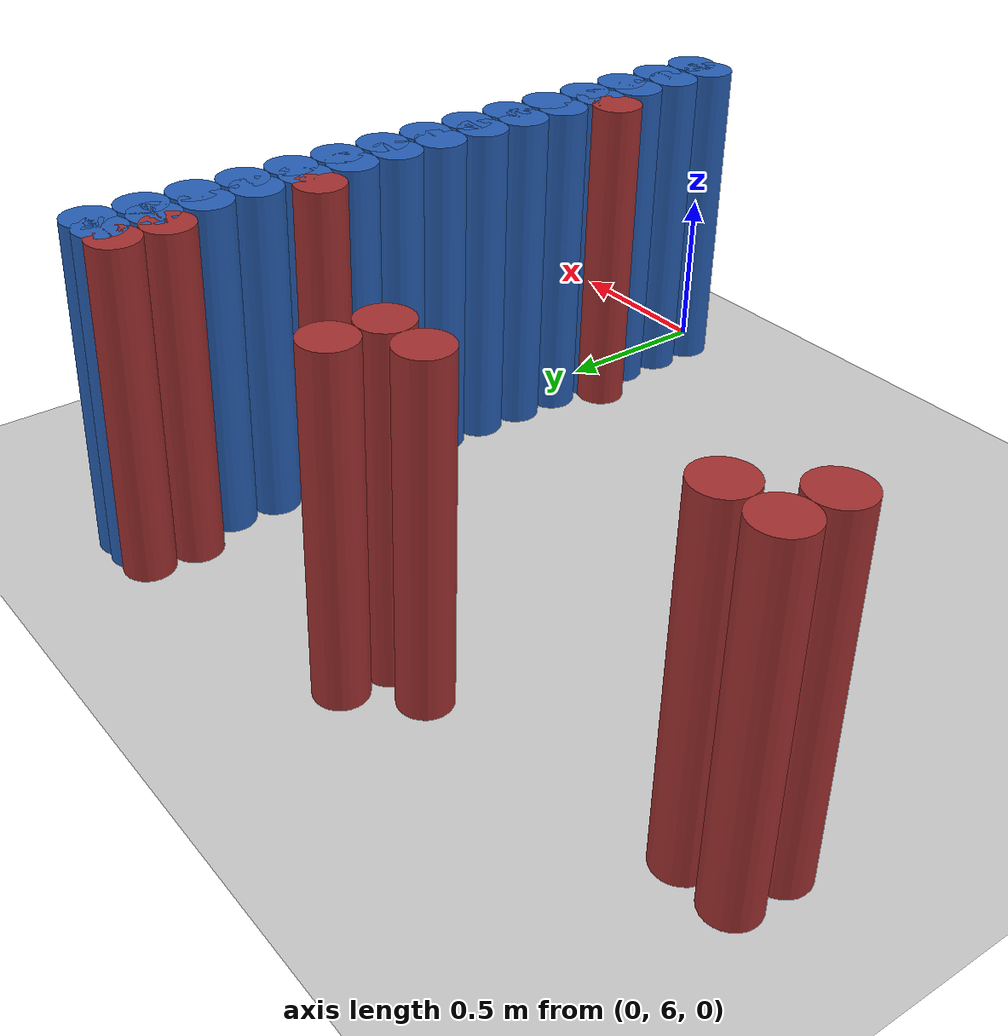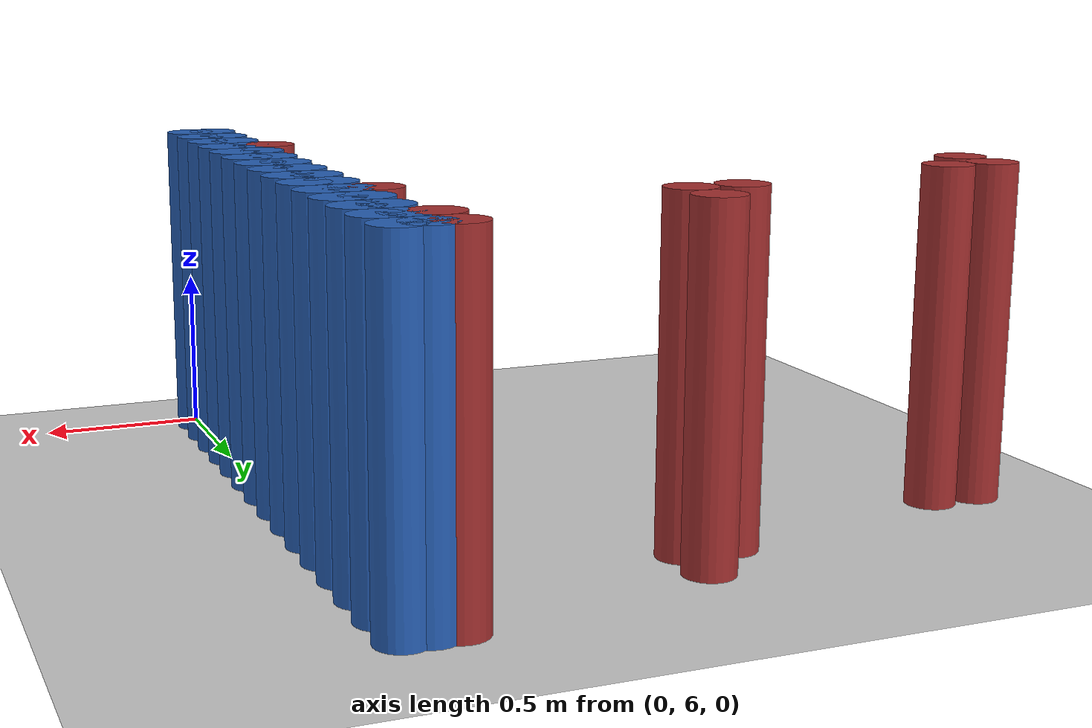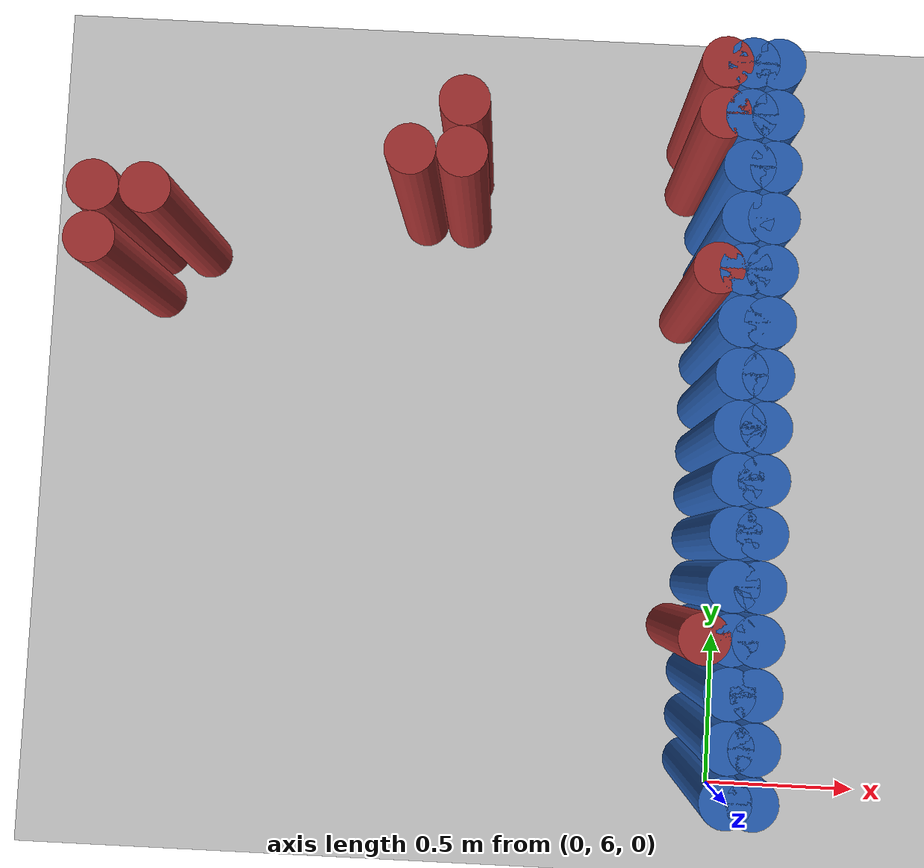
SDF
<sdf version="1.6">
 <world name="barn_world">
  <model name="ground_plane">
   <static>1</static>
   <link name="link">
    <collision name="collision">
     <geometry><plane><normal>0 0 1</normal><size>100 100</size></plane></geometry>
    </collision>
    <visual name="visual">
     <geometry><plane><normal>0 0 1</normal><size>100 100</size></plane></geometry>
     <material>
      <script><uri>file://media/materials/scripts/gazebo.material</uri><name>Gazebo/Grey</name></script>
     </material>
    </visual>
   </link>
  </model>
  <model name="unit_cylinder_183">
   <static>1</static>
   <pose>-1.9500 7.5750 0.5 0 0 0</pose>
   <link name="link">
    <collision name="collision">
     <geometry><cylinder><radius>0.075</radius><length>1</length></cylinder></geometry>
    </collision>
    <visual name="visual">
     <geometry><cylinder><radius>0.075</radius><length>1</length></cylinder></geometry>
     <material><ambient>0.648 0.192 0.192 1</ambient><diffuse>0.648 0.192 0.192 1</diffuse></material>
    </visual>
   </link>
  </model>
  <model name="unit_cylinder_184">
   <static>1</static>
   <pose>-1.9500 7.7250 0.5 0 0 0</pose>
   <link name="link">
    <collision name="collision">
     <geometry><cylinder><radius>0.075</radius><length>1</length></cylinder></geometry>
    </collision>
    <visual name="visual">
     <geometry><cylinder><radius>0.075</radius><length>1</length></cylinder></geometry>
     <material><ambient>0.648 0.192 0.192 1</ambient><diffuse>0.648 0.192 0.192 1</diffuse></material>
    </visual>
   </link>
  </model>
  <model name="unit_cylinder_185">
   <static>1</static>
   <pose>-1.8000 7.7250 0.5 0 0 0</pose>
   <link name="link">
    <collision name="collision">
     <geometry><cylinder><radius>0.075</radius><length>1</length></cylinder></geometry>
    </collision>
    <visual name="visual">
     <geometry><cylinder><radius>0.075</radius><length>1</length></cylinder></geometry>
     <material><ambient>0.648 0.192 0.192 1</ambient><diffuse>0.648 0.192 0.192 1</diffuse></material>
    </visual>
   </link>
  </model>
  <model name="unit_cylinder_189">
   <static>1</static>
   <pose>-1.0500 7.8750 0.5 0 0 0</pose>
   <link name="link">
    <collision name="collision">
     <geometry><cylinder><radius>0.075</radius><length>1</length></cylinder></geometry>
    </collision>
    <visual name="visual">
     <geometry><cylinder><radius>0.075</radius><length>1</length></cylinder></geometry>
     <material><ambient>0.648 0.192 0.192 1</ambient><diffuse>0.648 0.192 0.192 1</diffuse></material>
    </visual>
   </link>
  </model>
  <model name="unit_cylinder_190">
   <static>1</static>
   <pose>-0.9000 7.8750 0.5 0 0 0</pose>
   <link name="link">
    <collision name="collision">
     <geometry><cylinder><radius>0.075</radius><length>1</length></cylinder></geometry>
    </collision>
    <visual name="visual">
     <geometry><cylinder><radius>0.075</radius><length>1</length></cylinder></geometry>
     <material><ambient>0.648 0.192 0.192 1</ambient><diffuse>0.648 0.192 0.192 1</diffuse></material>
    </visual>
   </link>
  </model>
  <model name="unit_cylinder_191">
   <static>1</static>
   <pose>-0.9000 8.0250 0.5 0 0 0</pose>
   <link name="link">
    <collision name="collision">
     <geometry><cylinder><radius>0.075</radius><length>1</length></cylinder></geometry>
    </collision>
    <visual name="visual">
     <geometry><cylinder><radius>0.075</radius><length>1</length></cylinder></geometry>
     <material><ambient>0.648 0.192 0.192 1</ambient><diffuse>0.648 0.192 0.192 1</diffuse></material>
    </visual>
   </link>
  </model>
  <model name="unit_cylinder_197">
   <static>1</static>
   <pose>-0.1500 6.5250 0.5 0 0 0</pose>
   <link name="link">
    <collision name="collision">
     <geometry><cylinder><radius>0.075</radius><length>1</length></cylinder></geometry>
    </collision>
    <visual name="visual">
     <geometry><cylinder><radius>0.075</radius><length>1</length></cylinder></geometry>
     <material><ambient>0.648 0.192 0.192 1</ambient><diffuse>0.648 0.192 0.192 1</diffuse></material>
    </visual>
   </link>
  </model>
  <model name="unit_cylinder_198">
   <static>1</static>
   <pose>-0.1500 7.5750 0.5 0 0 0</pose>
   <link name="link">
    <collision name="collision">
     <geometry><cylinder><radius>0.075</radius><length>1</length></cylinder></geometry>
    </collision>
    <visual name="visual">
     <geometry><cylinder><radius>0.075</radius><length>1</length></cylinder></geometry>
     <material><ambient>0.648 0.192 0.192 1</ambient><diffuse>0.648 0.192 0.192 1</diffuse></material>
    </visual>
   </link>
  </model>
  <model name="unit_cylinder_199">
   <static>1</static>
   <pose>-0.1500 8.0250 0.5 0 0 0</pose>
   <link name="link">
    <collision name="collision">
     <geometry><cylinder><radius>0.075</radius><length>1</length></cylinder></geometry>
    </collision>
    <visual name="visual">
     <geometry><cylinder><radius>0.075</radius><length>1</length></cylinder></geometry>
     <material><ambient>0.648 0.192 0.192 1</ambient><diffuse>0.648 0.192 0.192 1</diffuse></material>
    </visual>
   </link>
  </model>
  <model name="unit_cylinder_200">
   <static>1</static>
   <pose>-0.1500 8.1750 0.5 0 0 0</pose>
   <link name="link">
    <collision name="collision">
     <geometry><cylinder><radius>0.075</radius><length>1</length></cylinder></geometry>
    </collision>
    <visual name="visual">
     <geometry><cylinder><radius>0.075</radius><length>1</length></cylinder></geometry>
     <material><ambient>0.648 0.192 0.192 1</ambient><diffuse>0.648 0.192 0.192 1</diffuse></material>
    </visual>
   </link>
  </model>
  <model name="unit_cylinder_208">
   <static>1</static>
   <pose>0.0000 6.0750 0.5 0 0 0</pose>
   <link name="link">
    <collision name="collision">
     <geometry><cylinder><radius>0.075</radius><length>1</length></cylinder></geometry>
    </collision>
    <visual name="visual">
     <geometry><cylinder><radius>0.075</radius><length>1</length></cylinder></geometry>
     <material><ambient>0.152 0.379 0.72 1</ambient><diffuse>0.152 0.379 0.72 1</diffuse></material>
    </visual>
   </link>
  </model>
  <model name="unit_cylinder_209">
   <static>1</static>
   <pose>0.0000 6.2250 0.5 0 0 0</pose>
   <link name="link">
    <collision name="collision">
     <geometry><cylinder><radius>0.075</radius><length>1</length></cylinder></geometry>
    </collision>
    <visual name="visual">
     <geometry><cylinder><radius>0.075</radius><length>1</length></cylinder></geometry>
     <material><ambient>0.152 0.379 0.72 1</ambient><diffuse>0.152 0.379 0.72 1</diffuse></material>
    </visual>
   </link>
  </model>
  <model name="unit_cylinder_210">
   <static>1</static>
   <pose>0.0000 6.3750 0.5 0 0 0</pose>
   <link name="link">
    <collision name="collision">
     <geometry><cylinder><radius>0.075</radius><length>1</length></cylinder></geometry>
    </collision>
    <visual name="visual">
     <geometry><cylinder><radius>0.075</radius><length>1</length></cylinder></geometry>
     <material><ambient>0.152 0.379 0.72 1</ambient><diffuse>0.152 0.379 0.72 1</diffuse></material>
    </visual>
   </link>
  </model>
  <model name="unit_cylinder_211">
   <static>1</static>
   <pose>0.0000 6.5250 0.5 0 0 0</pose>
   <link name="link">
    <collision name="collision">
     <geometry><cylinder><radius>0.075</radius><length>1</length></cylinder></geometry>
    </collision>
    <visual name="visual">
     <geometry><cylinder><radius>0.075</radius><length>1</length></cylinder></geometry>
     <material><ambient>0.152 0.379 0.72 1</ambient><diffuse>0.152 0.379 0.72 1</diffuse></material>
    </visual>
   </link>
  </model>
  <model name="unit_cylinder_212">
   <static>1</static>
   <pose>0.0000 6.6750 0.5 0 0 0</pose>
   <link name="link">
    <collision name="collision">
     <geometry><cylinder><radius>0.075</radius><length>1</length></cylinder></geometry>
    </collision>
    <visual name="visual">
     <geometry><cylinder><radius>0.075</radius><length>1</length></cylinder></geometry>
     <material><ambient>0.152 0.379 0.72 1</ambient><diffuse>0.152 0.379 0.72 1</diffuse></material>
    </visual>
   </link>
  </model>
  <model name="unit_cylinder_213">
   <static>1</static>
   <pose>0.0000 6.8250 0.5 0 0 0</pose>
   <link name="link">
    <collision name="collision">
     <geometry><cylinder><radius>0.075</radius><length>1</length></cylinder></geometry>
    </collision>
    <visual name="visual">
     <geometry><cylinder><radius>0.075</radius><length>1</length></cylinder></geometry>
     <material><ambient>0.152 0.379 0.72 1</ambient><diffuse>0.152 0.379 0.72 1</diffuse></material>
    </visual>
   </link>
  </model>
  <model name="unit_cylinder_214">
   <static>1</static>
   <pose>0.0000 6.9750 0.5 0 0 0</pose>
   <link name="link">
    <collision name="collision">
     <geometry><cylinder><radius>0.075</radius><length>1</length></cylinder></geometry>
    </collision>
    <visual name="visual">
     <geometry><cylinder><radius>0.075</radius><length>1</length></cylinder></geometry>
     <material><ambient>0.152 0.379 0.72 1</ambient><diffuse>0.152 0.379 0.72 1</diffuse></material>
    </visual>
   </link>
  </model>
  <model name="unit_cylinder_215">
   <static>1</static>
   <pose>0.0000 7.1250 0.5 0 0 0</pose>
   <link name="link">
    <collision name="collision">
     <geometry><cylinder><radius>0.075</radius><length>1</length></cylinder></geometry>
    </collision>
    <visual name="visual">
     <geometry><cylinder><radius>0.075</radius><length>1</length></cylinder></geometry>
     <material><ambient>0.152 0.379 0.72 1</ambient><diffuse>0.152 0.379 0.72 1</diffuse></material>
    </visual>
   </link>
  </model>
  <model name="unit_cylinder_216">
   <static>1</static>
   <pose>0.0000 7.2750 0.5 0 0 0</pose>
   <link name="link">
    <collision name="collision">
     <geometry><cylinder><radius>0.075</radius><length>1</length></cylinder></geometry>
    </collision>
    <visual name="visual">
     <geometry><cylinder><radius>0.075</radius><length>1</length></cylinder></geometry>
     <material><ambient>0.152 0.379 0.72 1</ambient><diffuse>0.152 0.379 0.72 1</diffuse></material>
    </visual>
   </link>
  </model>
  <model name="unit_cylinder_217">
   <static>1</static>
   <pose>0.0000 7.4250 0.5 0 0 0</pose>
   <link name="link">
    <collision name="collision">
     <geometry><cylinder><radius>0.075</radius><length>1</length></cylinder></geometry>
    </collision>
    <visual name="visual">
     <geometry><cylinder><radius>0.075</radius><length>1</length></cylinder></geometry>
     <material><ambient>0.152 0.379 0.72 1</ambient><diffuse>0.152 0.379 0.72 1</diffuse></material>
    </visual>
   </link>
  </model>
  <model name="unit_cylinder_218">
   <static>1</static>
   <pose>0.0000 7.5750 0.5 0 0 0</pose>
   <link name="link">
    <collision name="collision">
     <geometry><cylinder><radius>0.075</radius><length>1</length></cylinder></geometry>
    </collision>
    <visual name="visual">
     <geometry><cylinder><radius>0.075</radius><length>1</length></cylinder></geometry>
     <material><ambient>0.152 0.379 0.72 1</ambient><diffuse>0.152 0.379 0.72 1</diffuse></material>
    </visual>
   </link>
  </model>
  <model name="unit_cylinder_219">
   <static>1</static>
   <pose>0.0000 7.7250 0.5 0 0 0</pose>
   <link name="link">
    <collision name="collision">
     <geometry><cylinder><radius>0.075</radius><length>1</length></cylinder></geometry>
    </collision>
    <visual name="visual">
     <geometry><cylinder><radius>0.075</radius><length>1</length></cylinder></geometry>
     <material><ambient>0.152 0.379 0.72 1</ambient><diffuse>0.152 0.379 0.72 1</diffuse></material>
    </visual>
   </link>
  </model>
  <model name="unit_cylinder_220">
   <static>1</static>
   <pose>0.0000 7.8750 0.5 0 0 0</pose>
   <link name="link">
    <collision name="collision">
     <geometry><cylinder><radius>0.075</radius><length>1</length></cylinder></geometry>
    </collision>
    <visual name="visual">
     <geometry><cylinder><radius>0.075</radius><length>1</length></cylinder></geometry>
     <material><ambient>0.152 0.379 0.72 1</ambient><diffuse>0.152 0.379 0.72 1</diffuse></material>
    </visual>
   </link>
  </model>
  <model name="unit_cylinder_221">
   <static>1</static>
   <pose>0.0000 8.0250 0.5 0 0 0</pose>
   <link name="link">
    <collision name="collision">
     <geometry><cylinder><radius>0.075</radius><length>1</length></cylinder></geometry>
    </collision>
    <visual name="visual">
     <geometry><cylinder><radius>0.075</radius><length>1</length></cylinder></geometry>
     <material><ambient>0.152 0.379 0.72 1</ambient><diffuse>0.152 0.379 0.72 1</diffuse></material>
    </visual>
   </link>
  </model>
  <model name="unit_cylinder_222">
   <static>1</static>
   <pose>0.0000 8.1750 0.5 0 0 0</pose>
   <link name="link">
    <collision name="collision">
     <geometry><cylinder><radius>0.075</radius><length>1</length></cylinder></geometry>
    </collision>
    <visual name="visual">
     <geometry><cylinder><radius>0.075</radius><length>1</length></cylinder></geometry>
     <material><ambient>0.152 0.379 0.72 1</ambient><diffuse>0.152 0.379 0.72 1</diffuse></material>
    </visual>
   </link>
  </model>
  <model name="unit_cylinder_274">
   <static>1</static>
   <pose>-0.0750 6.0750 0.5 0 0 0</pose>
   <link name="link">
    <collision name="collision">
     <geometry><cylinder><radius>0.075</radius><length>1</length></cylinder></geometry>
    </collision>
    <visual name="visual">
     <geometry><cylinder><radius>0.075</radius><length>1</length></cylinder></geometry>
     <material><ambient>0.152 0.379 0.72 1</ambient><diffuse>0.152 0.379 0.72 1</diffuse></material>
    </visual>
   </link>
  </model>
  <model name="unit_cylinder_276">
   <static>1</static>
   <pose>-0.0750 6.2250 0.5 0 0 0</pose>
   <link name="link">
    <collision name="collision">
     <geometry><cylinder><radius>0.075</radius><length>1</length></cylinder></geometry>
    </collision>
    <visual name="visual">
     <geometry><cylinder><radius>0.075</radius><length>1</length></cylinder></geometry>
     <material><ambient>0.152 0.379 0.72 1</ambient><diffuse>0.152 0.379 0.72 1</diffuse></material>
    </visual>
   </link>
  </model>
  <model name="unit_cylinder_278">
   <static>1</static>
   <pose>-0.0750 6.3750 0.5 0 0 0</pose>
   <link name="link">
    <collision name="collision">
     <geometry><cylinder><radius>0.075</radius><length>1</length></cylinder></geometry>
    </collision>
    <visual name="visual">
     <geometry><cylinder><radius>0.075</radius><length>1</length></cylinder></geometry>
     <material><ambient>0.152 0.379 0.72 1</ambient><diffuse>0.152 0.379 0.72 1</diffuse></material>
    </visual>
   </link>
  </model>
  <model name="unit_cylinder_280">
   <static>1</static>
   <pose>-0.0750 6.5250 0.5 0 0 0</pose>
   <link name="link">
    <collision name="collision">
     <geometry><cylinder><radius>0.075</radius><length>1</length></cylinder></geometry>
    </collision>
    <visual name="visual">
     <geometry><cylinder><radius>0.075</radius><length>1</length></cylinder></geometry>
     <material><ambient>0.152 0.379 0.72 1</ambient><diffuse>0.152 0.379 0.72 1</diffuse></material>
    </visual>
   </link>
  </model>
  <model name="unit_cylinder_282">
   <static>1</static>
   <pose>-0.0750 6.6750 0.5 0 0 0</pose>
   <link name="link">
    <collision name="collision">
     <geometry><cylinder><radius>0.075</radius><length>1</length></cylinder></geometry>
    </collision>
    <visual name="visual">
     <geometry><cylinder><radius>0.075</radius><length>1</length></cylinder></geometry>
     <material><ambient>0.152 0.379 0.72 1</ambient><diffuse>0.152 0.379 0.72 1</diffuse></material>
    </visual>
   </link>
  </model>
  <model name="unit_cylinder_284">
   <static>1</static>
   <pose>-0.0750 6.8250 0.5 0 0 0</pose>
   <link name="link">
    <collision name="collision">
     <geometry><cylinder><radius>0.075</radius><length>1</length></cylinder></geometry>
    </collision>
    <visual name="visual">
     <geometry><cylinder><radius>0.075</radius><length>1</length></cylinder></geometry>
     <material><ambient>0.152 0.379 0.72 1</ambient><diffuse>0.152 0.379 0.72 1</diffuse></material>
    </visual>
   </link>
  </model>
  <model name="unit_cylinder_286">
   <static>1</static>
   <pose>-0.0750 6.9750 0.5 0 0 0</pose>
   <link name="link">
    <collision name="collision">
     <geometry><cylinder><radius>0.075</radius><length>1</length></cylinder></geometry>
    </collision>
    <visual name="visual">
     <geometry><cylinder><radius>0.075</radius><length>1</length></cylinder></geometry>
     <material><ambient>0.152 0.379 0.72 1</ambient><diffuse>0.152 0.379 0.72 1</diffuse></material>
    </visual>
   </link>
  </model>
  <model name="unit_cylinder_288">
   <static>1</static>
   <pose>-0.0750 7.1250 0.5 0 0 0</pose>
   <link name="link">
    <collision name="collision">
     <geometry><cylinder><radius>0.075</radius><length>1</length></cylinder></geometry>
    </collision>
    <visual name="visual">
     <geometry><cylinder><radius>0.075</radius><length>1</length></cylinder></geometry>
     <material><ambient>0.152 0.379 0.72 1</ambient><diffuse>0.152 0.379 0.72 1</diffuse></material>
    </visual>
   </link>
  </model>
  <model name="unit_cylinder_290">
   <static>1</static>
   <pose>-0.0750 7.2750 0.5 0 0 0</pose>
   <link name="link">
    <collision name="collision">
     <geometry><cylinder><radius>0.075</radius><length>1</length></cylinder></geometry>
    </collision>
    <visual name="visual">
     <geometry><cylinder><radius>0.075</radius><length>1</length></cylinder></geometry>
     <material><ambient>0.152 0.379 0.72 1</ambient><diffuse>0.152 0.379 0.72 1</diffuse></material>
    </visual>
   </link>
  </model>
  <model name="unit_cylinder_292">
   <static>1</static>
   <pose>-0.0750 7.4250 0.5 0 0 0</pose>
   <link name="link">
    <collision name="collision">
     <geometry><cylinder><radius>0.075</radius><length>1</length></cylinder></geometry>
    </collision>
    <visual name="visual">
     <geometry><cylinder><radius>0.075</radius><length>1</length></cylinder></geometry>
     <material><ambient>0.152 0.379 0.72 1</ambient><diffuse>0.152 0.379 0.72 1</diffuse></material>
    </visual>
   </link>
  </model>
  <model name="unit_cylinder_294">
   <static>1</static>
   <pose>-0.0750 7.5750 0.5 0 0 0</pose>
   <link name="link">
    <collision name="collision">
     <geometry><cylinder><radius>0.075</radius><length>1</length></cylinder></geometry>
    </collision>
    <visual name="visual">
     <geometry><cylinder><radius>0.075</radius><length>1</length></cylinder></geometry>
     <material><ambient>0.152 0.379 0.72 1</ambient><diffuse>0.152 0.379 0.72 1</diffuse></material>
    </visual>
   </link>
  </model>
  <model name="unit_cylinder_296">
   <static>1</static>
   <pose>-0.0750 7.7250 0.5 0 0 0</pose>
   <link name="link">
    <collision name="collision">
     <geometry><cylinder><radius>0.075</radius><length>1</length></cylinder></geometry>
    </collision>
    <visual name="visual">
     <geometry><cylinder><radius>0.075</radius><length>1</length></cylinder></geometry>
     <material><ambient>0.152 0.379 0.72 1</ambient><diffuse>0.152 0.379 0.72 1</diffuse></material>
    </visual>
   </link>
  </model>
  <model name="unit_cylinder_298">
   <static>1</static>
   <pose>-0.0750 7.8750 0.5 0 0 0</pose>
   <link name="link">
    <collision name="collision">
     <geometry><cylinder><radius>0.075</radius><length>1</length></cylinder></geometry>
    </collision>
    <visual name="visual">
     <geometry><cylinder><radius>0.075</radius><length>1</length></cylinder></geometry>
     <material><ambient>0.152 0.379 0.72 1</ambient><diffuse>0.152 0.379 0.72 1</diffuse></material>
    </visual>
   </link>
  </model>
  <model name="unit_cylinder_300">
   <static>1</static>
   <pose>-0.0750 8.0250 0.5 0 0 0</pose>
   <link name="link">
    <collision name="collision">
     <geometry><cylinder><radius>0.075</radius><length>1</length></cylinder></geometry>
    </collision>
    <visual name="visual">
     <geometry><cylinder><radius>0.075</radius><length>1</length></cylinder></geometry>
     <material><ambient>0.152 0.379 0.72 1</ambient><diffuse>0.152 0.379 0.72 1</diffuse></material>
    </visual>
   </link>
  </model>
  <model name="unit_cylinder_302">
   <static>1</static>
   <pose>-0.0750 8.1750 0.5 0 0 0</pose>
   <link name="link">
    <collision name="collision">
     <geometry><cylinder><radius>0.075</radius><length>1</length></cylinder></geometry>
    </collision>
    <visual name="visual">
     <geometry><cylinder><radius>0.075</radius><length>1</length></cylinder></geometry>
     <material><ambient>0.152 0.379 0.72 1</ambient><diffuse>0.152 0.379 0.72 1</diffuse></material>
    </visual>
   </link>
  </model>
 </world>
</sdf>
